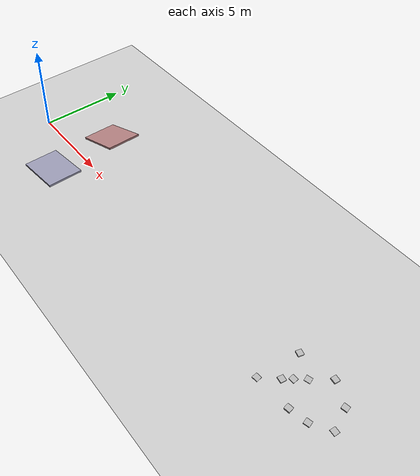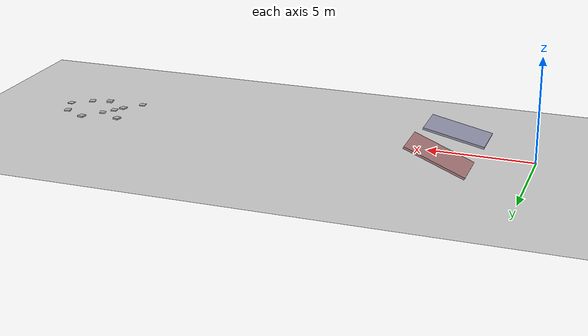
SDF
<sdf version="1.8">
 <world name="go2_rl">
  <model name="ground_plane">
   <static>true</static>
   <link name="link">
    <collision name="collision">
     <geometry><plane><normal>0 0 1</normal><size>200 200</size></plane></geometry>
     <surface><friction><ode><mu>1.0</mu><mu2>1.0</mu2></ode></friction></surface>
    </collision>
    <visual name="visual">
     <geometry><plane><normal>0 0 1</normal><size>200 200</size></plane></geometry>
     <material><ambient>0.8 0.8 0.8 1</ambient><diffuse>0.8 0.8 0.8 1</diffuse></material>
    </visual>
   </link>
  </model>
  <model name="ramp_12deg">
   <static>true</static>
   <pose>4 -2 0.3608 0 -0.2094 0</pose>
   <link name="link">
    <collision name="collision">
     <geometry><box><size>3 2 0.1</size></box></geometry>
     <surface><friction><ode><mu>1.0</mu><mu2>1.0</mu2></ode></friction></surface>
    </collision>
    <visual name="visual">
     <geometry><box><size>3 2 0.1</size></box></geometry>
     <material><ambient>0.6 0.6 0.7 1</ambient><diffuse>0.6 0.6 0.7 1</diffuse></material>
    </visual>
   </link>
  </model>
  <model name="ramp_22deg">
   <static>true</static>
   <pose>4 2 0.6083 0 -0.3840 0</pose>
   <link name="link">
    <collision name="collision">
     <geometry><box><size>3 2 0.1</size></box></geometry>
     <surface><friction><ode><mu>1.0</mu><mu2>1.0</mu2></ode></friction></surface>
    </collision>
    <visual name="visual">
     <geometry><box><size>3 2 0.1</size></box></geometry>
     <material><ambient>0.7 0.5 0.5 1</ambient><diffuse>0.7 0.5 0.5 1</diffuse></material>
    </visual>
   </link>
  </model>
  <model name="obstacles">
   <static>true</static>
   <link name="ob_1">
    <pose>20.2 -1.4 0.02 0 0 0.1</pose>
    <collision name="collision"><geometry><box><size>0.3 0.3 0.04</size></box></geometry></collision>
    <visual name="visual"><geometry><box><size>0.3 0.3 0.04</size></box></geometry></visual>
   </link>
   <link name="ob_2">
    <pose>20.9 -0.6 0.03 0 0 -0.2</pose>
    <collision name="collision"><geometry><box><size>0.3 0.3 0.06</size></box></geometry></collision>
    <visual name="visual"><geometry><box><size>0.3 0.3 0.06</size></box></geometry></visual>
   </link>
   <link name="ob_3">
    <pose>21.6 0.3 0.015 0 0 0.3</pose>
    <collision name="collision"><geometry><box><size>0.3 0.3 0.03</size></box></geometry></collision>
    <visual name="visual"><geometry><box><size>0.3 0.3 0.03</size></box></geometry></visual>
   </link>
   <link name="ob_4">
    <pose>22.3 1.2 0.04 0 0 -0.15</pose>
    <collision name="collision"><geometry><box><size>0.3 0.3 0.08</size></box></geometry></collision>
    <visual name="visual"><geometry><box><size>0.3 0.3 0.08</size></box></geometry></visual>
   </link>
   <link name="ob_5">
    <pose>22.9 -1.1 0.025 0 0 0.25</pose>
    <collision name="collision"><geometry><box><size>0.3 0.3 0.05</size></box></geometry></collision>
    <visual name="visual"><geometry><box><size>0.3 0.3 0.05</size></box></geometry></visual>
   </link>
   <link name="ob_6">
    <pose>20.5 0.9 0.035 0 0 -0.3</pose>
    <collision name="collision"><geometry><box><size>0.3 0.3 0.07</size></box></geometry></collision>
    <visual name="visual"><geometry><box><size>0.3 0.3 0.07</size></box></geometry></visual>
   </link>
   <link name="ob_7">
    <pose>21.2 -0.2 0.02 0 0 0.05</pose>
    <collision name="collision"><geometry><box><size>0.3 0.3 0.04</size></box></geometry></collision>
    <visual name="visual"><geometry><box><size>0.3 0.3 0.04</size></box></geometry></visual>
   </link>
   <link name="ob_8">
    <pose>23.4 0.6 0.03 0 0 0.2</pose>
    <collision name="collision"><geometry><box><size>0.3 0.3 0.06</size></box></geometry></collision>
    <visual name="visual"><geometry><box><size>0.3 0.3 0.06</size></box></geometry></visual>
   </link>
   <link name="ob_9">
    <pose>23.8 -0.5 0.015 0 0 -0.1</pose>
    <collision name="collision"><geometry><box><size>0.3 0.3 0.03</size></box></geometry></collision>
    <visual name="visual"><geometry><box><size>0.3 0.3 0.03</size></box></geometry></visual>
   </link>
   <link name="ob_10">
    <pose>22.0 -1.3 0.04 0 0 0.15</pose>
    <collision name="collision"><geometry><box><size>0.3 0.3 0.08</size></box></geometry></collision>
    <visual name="visual"><geometry><box><size>0.3 0.3 0.08</size></box></geometry></visual>
   </link>
  </model>
 </world>
</sdf>
